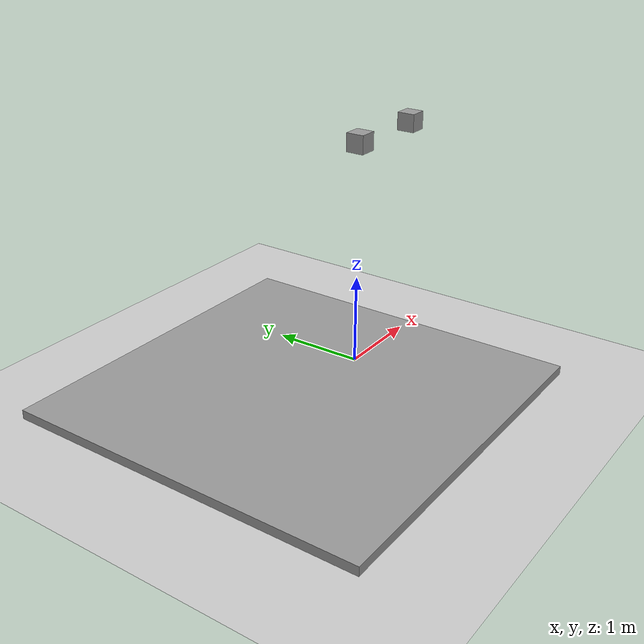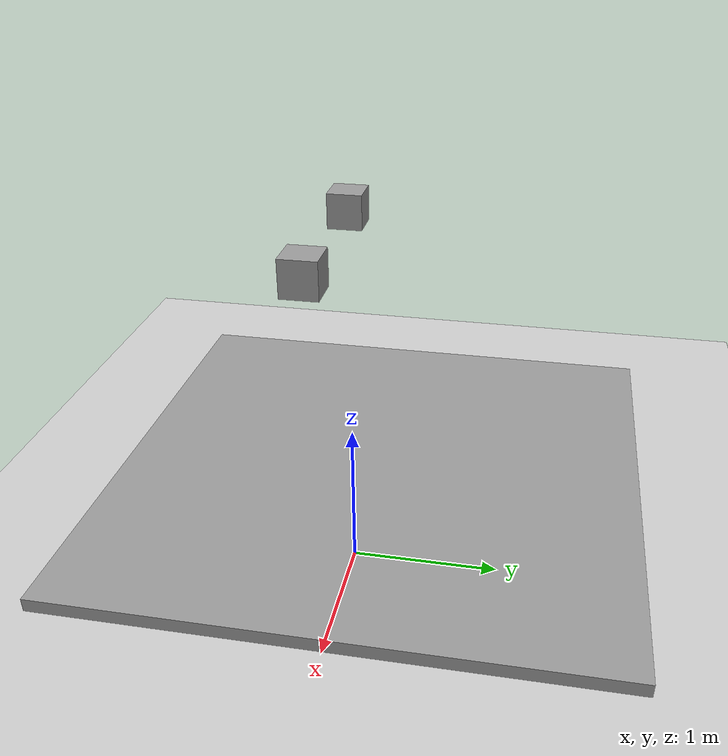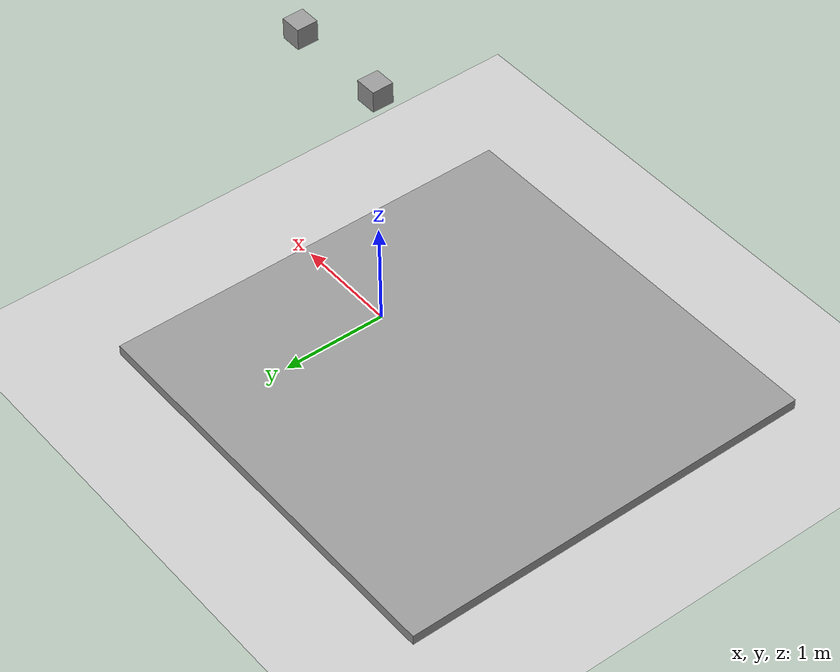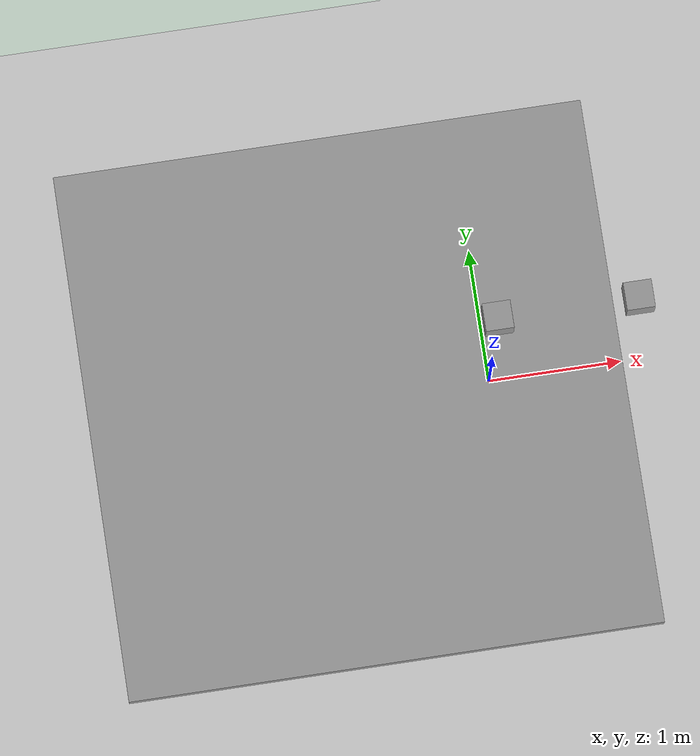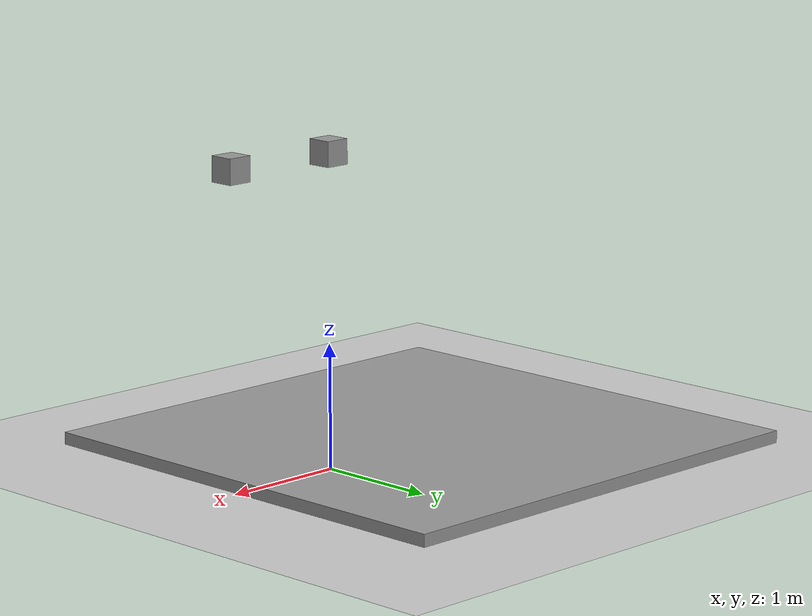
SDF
<sdf version="1.5">
 <world name="default">
  <light name="sun" type="directional">
   <pose>0 0 10 0 -0 0</pose>
   <diffuse>0.8 0.8 0.8 1</diffuse>
   <specular>0.2 0.2 0.2 1</specular>
   <attenuation>
    <range>1000</range>
    <constant>0.9</constant>
    <linear>0.01</linear>
    <quadratic>0.001</quadratic>
   </attenuation>
   <direction>-0.5 0.1 -0.9</direction>
  </light>
  <model name="ground_plane">
   <static>1</static>
   <link name="link">
    <collision name="collision">
     <geometry><plane><normal>0 0 1</normal><size>100 100</size></plane></geometry>
     <surface><friction><ode><mu>100</mu><mu2>50</mu2></ode></friction></surface>
    </collision>
    <visual name="visual">
     <cast_shadows>0</cast_shadows>
     <geometry><plane><normal>0 0 1</normal><size>100 100</size></plane></geometry>
     <material>
      <script><uri>file://media/materials/scripts/gazebo.material</uri><name>Gazebo/Grey</name></script>
     </material>
    </visual>
   </link>
  </model>
  <physics name="default_physics" default="0" type="roki">
   <max_step_size>0.001</max_step_size>
   <real_time_factor>1</real_time_factor>
   <real_time_update_rate>1000</real_time_update_rate>
   <gravity>0 0 -9.8</gravity>
   <magnetic_field>6e-06 2.3e-05 -4.2e-05</magnetic_field>
   <roki>
    <contact_info>
     <compensation>500</compensation>
     <relaxation>1</relaxation>
     <static_friction>1.0</static_friction>
     <friction>1.0</friction>
    </contact_info>
    <solver_type>Volume</solver_type>
    <debug_print>true</debug_print>
   </roki>
  </physics>
  <scene><ambient>0.4 0.4 0.4 1</ambient><background>0.7 0.7 0.7 1</background><shadows>1</shadows></scene>
  <audio><device>default</device></audio>
  <spherical_coordinates>
   <surface_model>EARTH_WGS84</surface_model>
   <latitude_deg>0</latitude_deg>
   <longitude_deg>0</longitude_deg>
   <elevation>0</elevation>
   <heading_deg>0</heading_deg>
  </spherical_coordinates>
  <model name="revol2_test01_0">
   <link name="link_0">
    <pose>-1 0 -1.62667 0 -0 0</pose>
    <inertial>
     <mass>100</mass>
     <inertia><ixx>1</ixx><ixy>0</ixy><ixz>0</ixz><iyy>1</iyy><iyz>0</iyz><izz>1</izz></inertia>
    </inertial>
    <visual name="visual">
     <geometry><box><size>4 4 0.1</size></box></geometry>
     <material>
      <lighting>1</lighting>
      <script><uri>file://media/materials/scripts/gazebo.material</uri><name>Gazebo/Grey</name></script>
      <shader type="pixel"><normal_map>__default__</normal_map></shader>
      <ambient>0.3 0.3 0.3 1</ambient>
      <diffuse>0.7 0.7 0.7 1</diffuse>
      <specular>0.01 0.01 0.01 1</specular>
      <emissive>0 0 0 1</emissive>
     </material>
    </visual>
    <collision name="collision">
     <geometry><box><size>4 4 0.1</size></box></geometry>
     <surface>
      <friction><ode><mu>1</mu><mu2>1</mu2><fdir1>0 0 0</fdir1><slip1>0</slip1><slip2>0</slip2></ode></friction>
      <bounce><restitution_coefficient>0</restitution_coefficient><threshold>1e+06</threshold></bounce>
      <contact>
       <collide_without_contact>0</collide_without_contact>
       <collide_without_contact_bitmask>1</collide_without_contact_bitmask>
       <collide_bitmask>1</collide_bitmask>
       <ode>
        <soft_cfm>0</soft_cfm>
        <soft_erp>0.2</soft_erp>
        <kp>1e+13</kp>
        <kd>1</kd>
        <max_vel>0.01</max_vel>
        <min_depth>0</min_depth>
       </ode>
       <bullet>
        <split_impulse>1</split_impulse>
        <split_impulse_penetration_threshold>-0.01</split_impulse_penetration_threshold>
        <soft_cfm>0</soft_cfm>
        <soft_erp>0.2</soft_erp>
        <kp>1e+13</kp>
        <kd>1</kd>
       </bullet>
      </contact>
     </surface>
    </collision>
   </link>
   <link name="link_1">
    <pose>0 0 0.813333 0 -0 0</pose>
    <inertial>
     <mass>1</mass>
     <inertia><ixx>1</ixx><ixy>0</ixy><ixz>0</ixz><iyy>1</iyy><iyz>0</iyz><izz>1</izz></inertia>
    </inertial>
    <visual name="visual">
     <geometry><box><size>0.2 0.2 0.2</size></box></geometry>
     <material>
      <lighting>1</lighting>
      <script><uri>file://media/materials/scripts/gazebo.material</uri><name>Gazebo/Grey</name></script>
      <shader type="pixel"><normal_map>__default__</normal_map></shader>
      <ambient>0.3 0.3 0.3 1</ambient>
      <diffuse>0.7 0.7 0.7 1</diffuse>
      <specular>0.01 0.01 0.01 1</specular>
      <emissive>0 0 0 1</emissive>
     </material>
    </visual>
    <collision name="collision">
     <geometry><box><size>0.2 0.2 0.2</size></box></geometry>
     <surface>
      <friction><ode><mu>1</mu><mu2>1</mu2><fdir1>0 0 0</fdir1><slip1>0</slip1><slip2>0</slip2></ode></friction>
      <bounce><restitution_coefficient>0</restitution_coefficient><threshold>1e+06</threshold></bounce>
      <contact>
       <collide_without_contact>0</collide_without_contact>
       <collide_without_contact_bitmask>1</collide_without_contact_bitmask>
       <collide_bitmask>1</collide_bitmask>
       <ode>
        <soft_cfm>0</soft_cfm>
        <soft_erp>0.2</soft_erp>
        <kp>1e+13</kp>
        <kd>1</kd>
        <max_vel>0.01</max_vel>
        <min_depth>0</min_depth>
       </ode>
       <bullet>
        <split_impulse>1</split_impulse>
        <split_impulse_penetration_threshold>-0.01</split_impulse_penetration_threshold>
        <soft_cfm>0</soft_cfm>
        <soft_erp>0.2</soft_erp>
        <kp>1e+13</kp>
        <kd>1</kd>
       </bullet>
      </contact>
     </surface>
    </collision>
   </link>
   <link name="link_2">
    <pose>1 0 0.813333 0 -0 0</pose>
    <inertial>
     <mass>1</mass>
     <inertia><ixx>1</ixx><ixy>0</ixy><ixz>0</ixz><iyy>1</iyy><iyz>0</iyz><izz>1</izz></inertia>
    </inertial>
    <visual name="visual">
     <geometry><box><size>0.2 0.2 0.2</size></box></geometry>
     <material>
      <lighting>1</lighting>
      <script><uri>file://media/materials/scripts/gazebo.material</uri><name>Gazebo/Grey</name></script>
      <shader type="pixel"><normal_map>__default__</normal_map></shader>
      <ambient>0.3 0.3 0.3 1</ambient>
      <diffuse>0.7 0.7 0.7 1</diffuse>
      <specular>0.01 0.01 0.01 1</specular>
      <emissive>0 0 0 1</emissive>
     </material>
    </visual>
    <collision name="collision">
     <geometry><box><size>0.2 0.2 0.2</size></box></geometry>
     <surface>
      <friction><ode><mu>1</mu><mu2>1</mu2><fdir1>0 0 0</fdir1><slip1>0</slip1><slip2>0</slip2></ode></friction>
      <bounce><restitution_coefficient>0</restitution_coefficient><threshold>1e+06</threshold></bounce>
      <contact>
       <collide_without_contact>0</collide_without_contact>
       <collide_without_contact_bitmask>1</collide_without_contact_bitmask>
       <collide_bitmask>1</collide_bitmask>
       <ode>
        <soft_cfm>0</soft_cfm>
        <soft_erp>0.2</soft_erp>
        <kp>1e+13</kp>
        <kd>1</kd>
        <max_vel>0.01</max_vel>
        <min_depth>0</min_depth>
       </ode>
       <bullet>
        <split_impulse>1</split_impulse>
        <split_impulse_penetration_threshold>-0.01</split_impulse_penetration_threshold>
        <soft_cfm>0</soft_cfm>
        <soft_erp>0.2</soft_erp>
        <kp>1e+13</kp>
        <kd>1</kd>
       </bullet>
      </contact>
     </surface>
    </collision>
   </link>
   <joint name="link_0_revol" type="revolute">
    <parent>link_0</parent>
    <child>link_1</child>
    <pose>-1 0 0 0 -0 0</pose>
    <axis>
     <xyz>0 1 0</xyz>
     <use_parent_model_frame>0</use_parent_model_frame>
     <limit>
      <lower>-1.79769e+308</lower>
      <upper>1.79769e+308</upper>
      <effort>-1</effort>
      <velocity>-1</velocity>
     </limit>
     <dynamics>
      <spring_reference>0</spring_reference>
      <spring_stiffness>0</spring_stiffness>
      <damping>0</damping>
      <friction>0</friction>
     </dynamics>
    </axis>
    <physics>
     <ode>
      <cfm>0</cfm>
      <bounce>0</bounce>
      <velocity>0</velocity>
      <fudge_factor>0</fudge_factor>
      <limit><cfm>0</cfm><erp>0.2</erp></limit>
      <suspension><cfm>0</cfm><erp>0.2</erp></suspension>
     </ode>
    </physics>
   </joint>
   <joint name="link_1_revol" type="revolute">
    <parent>link_1</parent>
    <child>link_2</child>
    <pose>-1 0 0 0 -0 0</pose>
    <axis>
     <xyz>0 1 0</xyz>
     <use_parent_model_frame>0</use_parent_model_frame>
     <limit>
      <lower>-1.79769e+308</lower>
      <upper>1.79769e+308</upper>
      <effort>-1</effort>
      <velocity>-1</velocity>
     </limit>
     <dynamics>
      <spring_reference>0</spring_reference>
      <spring_stiffness>0</spring_stiffness>
      <damping>0</damping>
      <friction>0</friction>
     </dynamics>
    </axis>
    <physics>
     <ode>
      <cfm>0</cfm>
      <bounce>0</bounce>
      <velocity>0</velocity>
      <fudge_factor>0</fudge_factor>
      <limit><cfm>0</cfm><erp>0.2</erp></limit>
      <suspension><cfm>0</cfm><erp>0.2</erp></suspension>
     </ode>
    </physics>
   </joint>
   <static>0</static>
   <pose>0 0 1.69 0 -0 0</pose>
  </model>
 </world>
</sdf>
